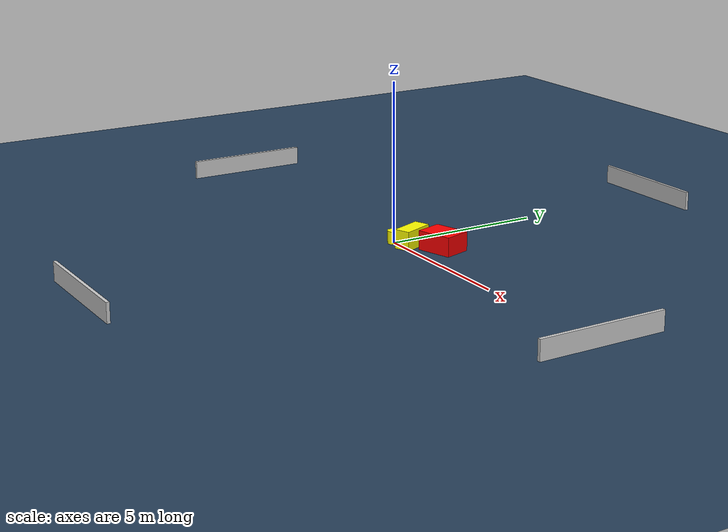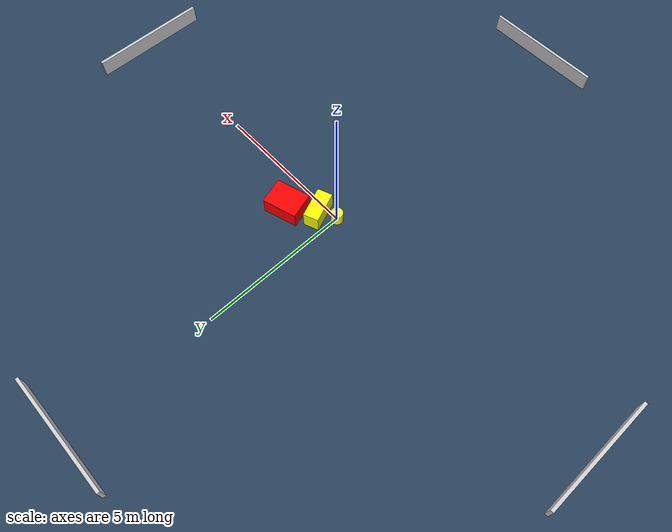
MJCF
<?xml version="1.0" ?>
<mujoco model="generated_environment">
  <option timestep="0.01" integrator="RK4" cone="elliptic"/>
  <default>
    <geom density="1"/>
  </default>
  <asset>
    <texture builtin="gradient" height="3072" name="skybox" rgb1="0.3 0.5 0.7" rgb2="0 0 0" type="skybox" width="512"/>
    <texture builtin="checker" height="300" name="groundplane" rgb1="0.2 0.3 0.4" rgb2="0.1 0.2 0.3" type="2d" width="300"/>
    <material name="groundplane" reflectance="0.2" texrepeat="5 5" texture="groundplane"/>
  </asset>
  <worldbody>
    <light dir="0 0 -1" directional="true" pos="0 0 1.5"/>
    <geom condim="3" friction="0.5 0.005 0.001" material="groundplane" name="floor" pos="0 0 0" size="0 0 0.05" type="plane"/>
    <body name="walls">
      <geom name="wall_1" condim="4" pos="-10.0 0.0 0.3" rgba="0.800000011920929 0.800000011920929 0.800000011920929 1.0" size="0.05 2.0 0.3" type="box"/>
      <geom name="wall_2" condim="4" pos="10.0 0.0 0.3" rgba="0.800000011920929 0.800000011920929 0.800000011920929 1.0" size="0.05 2.0 0.3" type="box"/>
      <geom name="wall_3" condim="4" pos="0.0 -10.0 0.3" rgba="0.800000011920929 0.800000011920929 0.800000011920929 1.0" size="2.0 0.05 0.3" type="box"/>
      <geom name="wall_4" condim="4" pos="0.0 10.0 0.3" rgba="0.800000011920929 0.800000011920929 0.800000011920929 1.0" size="2.0 0.05 0.3" type="box"/>
    </body>
    <body name="robot">
      <joint name="joint_x" type="slide" pos="0 0 0" axis="1 0 0"/>
      <joint name="joint_y" type="slide" pos="0 0 0" axis="0 1 0"/>
      <geom name="robot" type="cylinder" pos="0.0 0.0 0.2" size="0.2 0.2 0.0" mass="5.0" friction="1.0 0.005 0.0001" condim="4" rgba="1.0 1.0 0.0 1.0"/>
    </body>
    <body name="obstacle_1_movable">
      <geom name="obstacle_1_movable" condim="4" pos="0.5308194557771985 0.31406882013402715 0.3" euler="0 0 111.79062201318459" friction="0.0 0.005 0.001" rgba="1.0 1.0 0.0 1.0" size="0.516675782608931 0.25040813610835644 0.3" type="box" mass="0.1"/>
      <joint type="free"/>
    </body>
    <body name="obstacle_2_static">
      <geom name="obstacle_2_static" condim="4" pos="1.3760699303756678 0.875229395947583 0.3" euler="0 0 17.083939827145713" friction="0.0 0.005 0.001" rgba="1.0 0.0 0.0 1.0" size="0.5724386849170151 0.4369426760012829 0.3" type="box"/>
    </body>
  </worldbody>
  <actuator>
    <motor name="actuator_x" joint="joint_x" gear="1" ctrlrange="-1 1"/>
    <motor name="actuator_y" joint="joint_y" gear="1" ctrlrange="-1 1"/>
  </actuator>
</mujoco>
